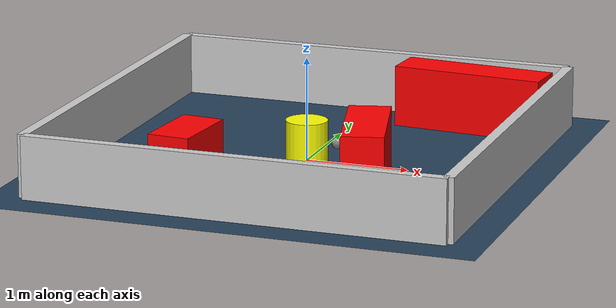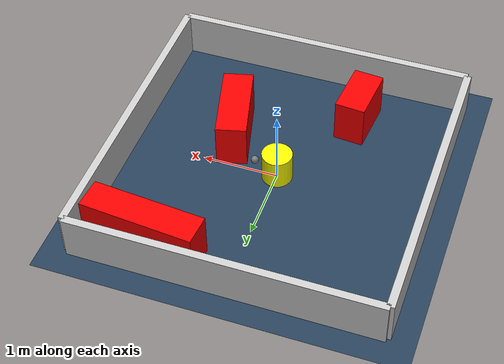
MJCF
<?xml version="1.0" ?>
<mujoco model="generated_environment">
  <option timestep="0.01" integrator="RK4" cone="elliptic"/>
  <default>
    <geom density="1"/>
  </default>
  <asset>
    <texture builtin="gradient" height="3072" rgb1="0.3 0.5 0.7" rgb2="0 0 0" type="skybox" width="512"/>
    <texture builtin="checker" height="300" mark="edge" markrgb="0.8 0.8 0.8" name="groundplane" rgb1="0.2 0.3 0.4" rgb2="0.1 0.2 0.3" type="2d" width="300"/>
    <material name="groundplane" reflectance="0.2" texrepeat="5 5" texture="groundplane" texuniform="true"/>
    <material name="robot" rgba="0.0 1.0 0.0 1"/>
  </asset>
  <worldbody>
    <light dir="0 0 -1" directional="true" pos="0 0 1.5"/>
    <geom condim="4" friction="1.0 0.005 0.001" material="groundplane" name="floor" size="0 0 0.05" type="plane"/>
    <body name="walls">
      <geom name="wall_1" condim="4" pos="-2.0 0.0 0.3" rgba="0.800000011920929 0.800000011920929 0.800000011920929 1.0" size="0.05 2.0 0.3" type="box"/>
      <geom name="wall_2" condim="4" pos="2.0 0.0 0.3" rgba="0.800000011920929 0.800000011920929 0.800000011920929 1.0" size="0.05 2.0 0.3" type="box"/>
      <geom name="wall_3" condim="4" pos="0.0 -2.0 0.3" rgba="0.800000011920929 0.800000011920929 0.800000011920929 1.0" size="2.0 0.05 0.3" type="box"/>
      <geom name="wall_4" condim="4" pos="0.0 2.0 0.3" rgba="0.800000011920929 0.800000011920929 0.800000011920929 1.0" size="2.0 0.05 0.3" type="box"/>
    </body>
    <body name="robot">
      <joint name="joint_x" type="slide" pos="0 0 0" axis="1 0 0"/>
      <joint name="joint_y" type="slide" pos="0 0 0" axis="0 1 0"/>
      <geom name="robot" type="sphere" pos="0.3 0.0 0.2" size="0.05" mass="5." friction="1.0 0.005 0.0001" condim="4" rgba="0.5 0.5 0.5 1.0"/>
      <site name="sensor_ball"/>
    </body>
    <body name="obstacle_movable_1">
      <geom name="obstacle_movable_1" condim="4" pos="0.0 0.0 0.2" euler="0 0 0.0" friction="1.0 0.005 0.001" rgba="1.0 1.0 0.0 1.0" size="0.2 0.2 0.0" type="cylinder" mass="0.1"/>
      <joint type="free"/>
    </body>
    <body name="obstacle_2_static">
      <geom name="obstacle_2_static" condim="4" pos="-0.7147307500252419 -1.262714102106748 0.3" euler="0 0 85.12151788097567" friction="1.0 0.005 0.001" rgba="1 0 0 1" size="0.3611582826039223 0.2 0.3" type="box"/>
    </body>
    <body name="obstacle_3_static">
      <geom name="obstacle_3_static" condim="4" pos="0.7669427608919928 -0.5406952387916808 0.3" euler="0 0 284.64748372697784" friction="1.0 0.005 0.001" rgba="1 0 0 1" size="0.5356644583833986 0.2 0.3" type="box"/>
    </body>
    <body name="obstacle_4_static">
      <geom name="obstacle_4_static" condim="4" pos="1.155661122111597 1.5924717600853262 0.3" euler="0 0 355.1420016620369" friction="1.0 0.005 0.001" rgba="1 0 0 1" size="0.7429670387044967 0.2 0.3" type="box"/>
    </body>
  </worldbody>
  <actuator>
    <motor name="actuator_x" joint="joint_x" gear="1" ctrlrange="-1 1"/>
    <motor name="actuator_y" joint="joint_y" gear="1" ctrlrange="-1 1"/>
  </actuator>
</mujoco>
